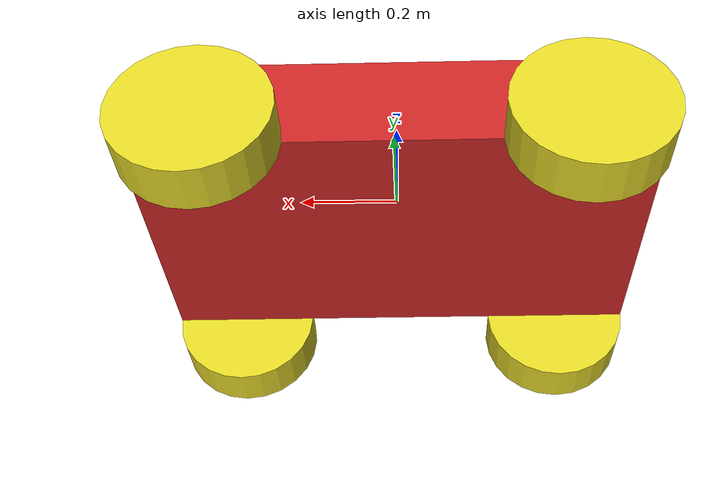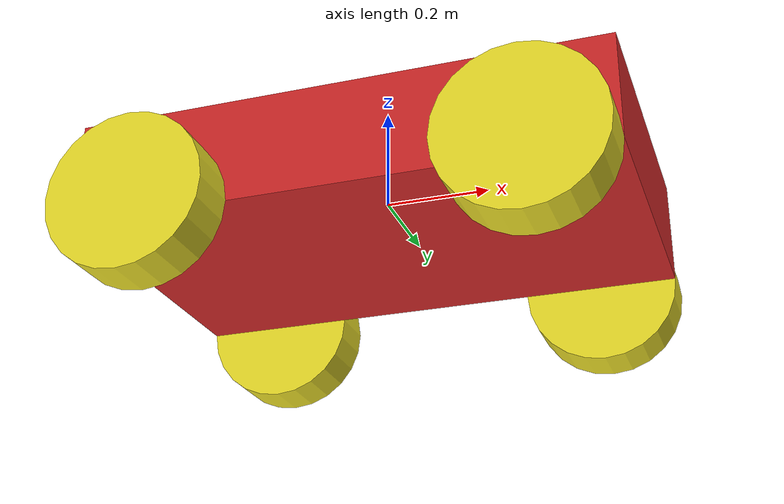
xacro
<?xml version="1.0"?>

<robot name="differential_drive_robot"
       xmlns:xacro="http://www.ros.org/wiki/xacro">

    <!-- PARAMETERS -->

    <xacro:property name="body_link_x_dim" value="1.0"/>
    <xacro:property name="body_link_y_dim" value="0.6"/>
    <xacro:property name="body_link_z_dim" value="0.2"/>

    <xacro:property name="wheel_link_radius" value="0.15"/>
    <xacro:property name="wheel_link_length" value="0.1"/>
    <xacro:property name="wheel_link_z_location" value="-0.1"/>

    <xacro:property name="body_density" value="2710.0"/>
    <xacro:property name="wheel_density" value="2710.0"/>

    <xacro:property name="pi_const" value="3.14159265"/>

    <!-- MASS -->

    <xacro:property
        name="body_mass"
        value="${body_density * body_link_x_dim * body_link_y_dim * body_link_z_dim}"/>

    <xacro:property
        name="wheel_mass"
        value="${wheel_density * pi_const * wheel_link_radius * wheel_link_radius * wheel_link_length}"/>

    <!-- WHEEL INERTIA -->

    <xacro:property
        name="Iz_wheel"
        value="${0.5 * wheel_mass * wheel_link_radius * wheel_link_radius}"/>

    <xacro:property
        name="I_wheel"
        value="${(1.0/12.0) * wheel_mass * (3.0 * wheel_link_radius * wheel_link_radius + wheel_link_length * wheel_link_length)}"/>

    <!-- GAZEBO INCLUDE -->

    <xacro:include filename="$(find mobile_robot)/model/robot.gazebo"/>

    <!-- WHEEL INERTIA MACRO -->

    <xacro:macro name="inertial_wheel">

        <inertial>

            <origin xyz="0 0 0" rpy="0 0 0"/>

            <mass value="${wheel_mass}"/>

            <inertia
                ixx="${I_wheel}"
                ixy="0.0"
                ixz="0.0"
                iyy="${I_wheel}"
                iyz="0.0"
                izz="${Iz_wheel}"/>

        </inertial>

    </xacro:macro>

    <!-- DUMMY LINK -->

    <link name="dummy"/>

    <joint name="dummy_joint" type="fixed">

        <parent link="dummy"/>
        <child link="body_link"/>

    </joint>

    <!-- BODY LINK -->

    <link name="body_link">

        <visual>
            <geometry>
                <box size="${body_link_x_dim}
                           ${body_link_y_dim}
                           ${body_link_z_dim}"/>
            </geometry>
        </visual>

        <collision>

            <origin xyz="0 0 0" rpy="0 0 0"/>

            <geometry>
                <box size="${body_link_x_dim}
                           ${body_link_y_dim}
                           ${body_link_z_dim}"/>
            </geometry>

        </collision>

        <inertial>

            <origin xyz="0 0 0" rpy="0 0 0"/>

            <mass value="${body_mass}"/>

            <inertia
                ixx="${(1.0/12.0)*body_mass*(body_link_y_dim*body_link_y_dim + body_link_z_dim*body_link_z_dim)}"
                ixy="0.0"
                ixz="0.0"
                iyy="${(1.0/12.0)*body_mass*(body_link_x_dim*body_link_x_dim + body_link_z_dim*body_link_z_dim)}"
                iyz="0.0"
                izz="${(1.0/12.0)*body_mass*(body_link_x_dim*body_link_x_dim + body_link_y_dim*body_link_y_dim)}"/>

        </inertial>

    </link>

    <!-- WHEEL MACRO -->

    <xacro:macro name="wheel" params="name x y">

        <joint name="${name}_joint" type="continuous">

            <parent link="body_link"/>
            <child link="${name}_link"/>

            <origin xyz="${x} ${y} ${wheel_link_z_location}"
                    rpy="0 0 0"/>

            <axis xyz="0 1 0"/>

            <limit effort="1000" velocity="1000"/>

            <dynamics damping="1.0"
                      friction="1.0"/>

        </joint>

        <link name="${name}_link">

            <visual>

                <origin xyz="0 0 0"
                        rpy="1.570795 0 0"/>

                <geometry>
                    <cylinder length="${wheel_link_length}"
                              radius="${wheel_link_radius}"/>
                </geometry>

            </visual>

            <collision>

                <origin xyz="0 0 0"
                        rpy="1.570795 0 0"/>

                <geometry>
                    <cylinder length="${wheel_link_length}"
                              radius="${wheel_link_radius}"/>
                </geometry>

            </collision>

            <xacro:inertial_wheel/>

        </link>

    </xacro:macro>

    <!-- FOUR WHEELS -->

    <xacro:wheel
        name="wheel1"
        x="0.35"
        y="-0.35"/>

    <xacro:wheel
        name="wheel2"
        x="0.35"
        y="0.35"/>

    <xacro:wheel
        name="wheel3"
        x="-0.35"
        y="-0.35"/>

    <xacro:wheel
        name="wheel4"
        x="-0.35"
        y="0.35"/>

    <link name="lidar_pole_link">

        <visual>
            <origin xyz="0 0 0" rpy="0 0 0"/>
            <geometry>
                <cylinder radius="0.02" length="0.05"/>
            </geometry>
            <material name="dark_grey">
                <color rgba="0.3 0.3 0.3 1.0"/>
            </material>
        </visual>

        <collision>
            <origin xyz="0 0 0" rpy="0 0 0"/>
            <geometry>
                <cylinder radius="0.02" length="0.05"/>
            </geometry>
        </collision>

        <inertial>
            <origin xyz="0 0 0" rpy="0 0 0"/>
            <mass value="0.05"/>
            <inertia ixx="0.000054" ixy="0" ixz="0"
                     iyy="0.000054" iyz="0"
                     izz="0.000010"/>
        </inertial>

    </link>

    <joint name="lidar_pole_joint" type="fixed">
        <parent link="body_link"/>
        <child  link="lidar_pole_link"/>
        <!-- Centre of pole = chassis top + half pole height -->
        <origin xyz="0 0 ${body_link_z_dim/2 + 0.025}" rpy="0 0 0"/>
    </joint>

    <link name="lidar_link">

        <visual>
            <origin xyz="0 0 0" rpy="0 0 0"/>
            <geometry>
                <cylinder radius="0.05" length="0.06"/>
            </geometry>
            <material name="lidar_black">
                <color rgba="0.05 0.05 0.05 1.0"/>
            </material>
        </visual>

        <collision>
            <origin xyz="0 0 0" rpy="0 0 0"/>
            <geometry>
                <cylinder radius="0.05" length="0.06"/>
            </geometry>
        </collision>

        <inertial>
            <origin xyz="0 0 0" rpy="0 0 0"/>
            <mass value="0.18"/>
            <inertia ixx="0.000413" ixy="0" ixz="0"
                     iyy="0.000413" iyz="0"
                     izz="0.000225"/>
        </inertial>

    </link>

    <joint name="lidar_joint" type="fixed">
        <parent link="lidar_pole_link"/>
        <child  link="lidar_link"/>
        <!-- Centre of sensor = top of pole + half sensor height -->
        <origin xyz="0 0 ${0.025 + 0.03}" rpy="0 0 0"/>
    </joint>

</robot>
